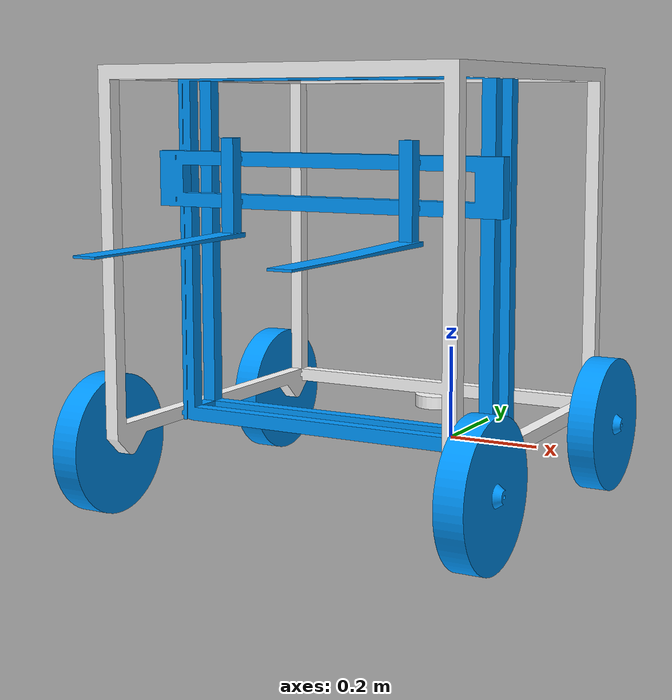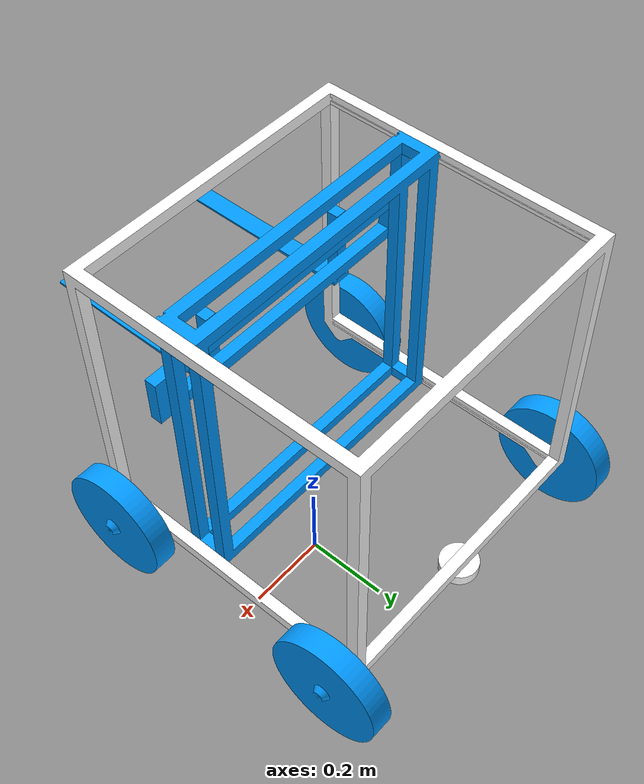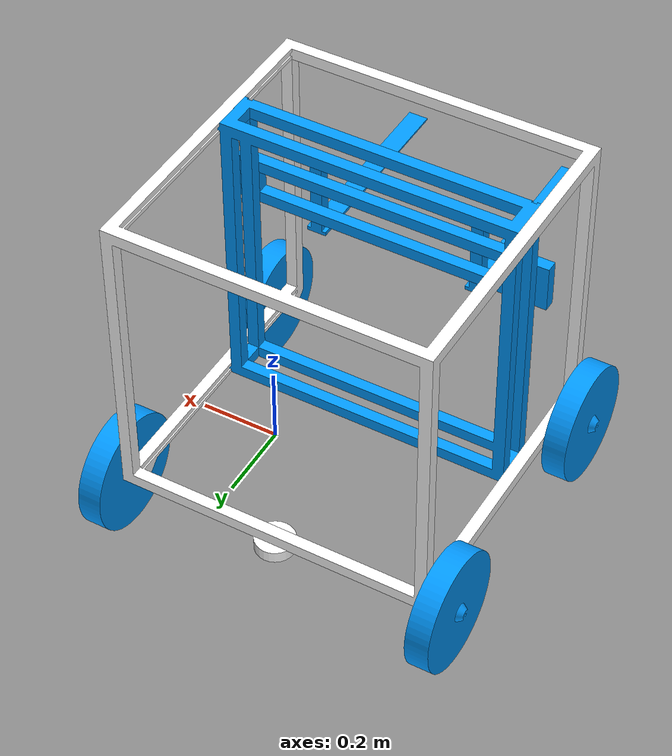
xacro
<?xml version="1.0"?>
<robot xmlns:xacro="http://www.ros.org/wiki/xacro"  name="robot">

    <xacro:include filename="robot_core.xacro" />
    <xacro:include filename="inertial_macros.xacro" />
    <xacro:include filename="gazebo_control.xacro" />
    <xacro:include filename="lidar.xacro" />
    <xacro:include filename="side_slide_transmission.xacro" />
    <xacro:include filename="front_slide_tranmission.xacro" />
    <xacro:include filename="fork_left_tranmission.xacro"/>
    <xacro:include filename="fork_right_tranmission.xacro"/>
    <xacro:include filename="robot_control.urdf.xacro"/>

    <ros2_control name="gripper_robot_gazebo_system" type="system">
        <hardware>
            <plugin>gazebo_ros2_control/GazeboSystem</plugin>
        </hardware>
        <xacro:side_slide_transmission/>
        <xacro:front_slide_transmission/>
        <xacro:fork_left_transmission/>
        <xacro:fork_right_transmission/>
    </ros2_control>
    <xacro:robot_controller/>
</robot>

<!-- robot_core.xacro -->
<robot xmlns:xacro="http://www.ros.org/wiki/xacro" >
<xacro:include filename="inertial_macros.xacro" />

    <material name="white">
        <color rgba="1 1 1 1" />
    </material>

    <material name="orange">
        <color rgba="1 0.5 0 1"/>
    </material>

    <material name="blue">
        <color rgba="0 0.6 1 1"/>
    </material>

    <material name="black">
        <color rgba="0 0 0 1"/>
    </material>

    <material name="red">
        <color rgba="1 0 0 1"/>
    </material>

    <!-- BASE LINK -->

    <link name="base_link">

    </link>
    <link name="chassis">
        <visual>
            <origin xyz="0.324 0.272 -0.016" rpy="0 0 0"/>
            <geometry>
                <mesh filename = "file://$(find articubot_one)/description/Robot_dae/Robot_chassis.dae" scale = "1 1 1"/>
            </geometry>
            <material name="white"/>
        </visual>
        <collision>
            <origin xyz="0.324 0.272 -0.016" rpy="0 0 0"/>
            <geometry>
                <mesh filename = "file://$(find articubot_one)/description/Robot_dae/Robot_chassis.dae" scale = "1 1 1"/>
            </geometry>
        </collision>
        <xacro:inertial_box mass="50" x="0.81" y="0.78" z="0.78">
            <origin xyz="-0.0825 -0.059 0.41" rpy="0 0 0"/>
        </xacro:inertial_box>
    </link>
    <gazebo reference="chassis">
        <material>Gazebo/Orange</material>
    </gazebo>

    <!-- BASE_FOOTPRINT LINK -->

    <joint name="base_footprint_joint" type="fixed">
        <parent link="base_link"/>
        <child link="base_footprint"/>
        <origin xyz="0 0 0" rpy="0 0 0"/>
    </joint>

    <link name="base_footprint">
    </link>

    <joint name="chassis_joint" type="fixed">
        <parent link="base_link"/>
        <child link="chassis"/>
        <origin xyz="-0.1 0 0"/>
    </joint>

    <!-- LEFT BACK WHEEL -->

    <joint name="left_back_wheel_joint" type="continuous">
        <parent link="base_link"/>
        <child link="left_back_wheel"/>
        <origin xyz="0.2695 0.272 0.004" rpy="0 -${pi/2} 0"/>
        <axis xyz="0 0 -1"/>
    </joint>
    <link name="left_back_wheel">
        <visual>
            <geometry>
                <mesh filename = "file://$(find articubot_one)/description/Robot_dae/Robot_wheell.dae" scale = "1 1 1"/>
            </geometry>
            <material name="blue"/>
        </visual>
        <collision>
            <geometry>
                <mesh filename = "file://$(find articubot_one)/description/Robot_dae/Robot_wheell.dae" scale = "1 1 1"/>
            </geometry>
        </collision>
        <xacro:inertial_cylinder mass="5" length="0.075" radius="0.15">
            <origin xyz="0 0 0.004" rpy="0 -${pi/2} 0"/>
        </xacro:inertial_cylinder>
    </link>
    <gazebo reference="left_back_wheel">
        <material>Gazebo/Blue</material>
        <mu1 value="0.8"/>
        <mu2 value="0.8"/>
    </gazebo>

    <!-- LEFT FRONT WHEEL -->

    <joint name="left_front_wheel_joint" type="continuous">
        <parent link="base_link"/>
        <child link="left_front_wheel"/>
        <origin xyz="0.2695 -0.408 0.004" rpy="0 -${pi/2} 0"/>
        <axis xyz="0 0 -1"/>
    </joint>
    <link name="left_front_wheel">
        <visual>
            <geometry>
                <mesh filename = "file://$(find articubot_one)/description/Robot_dae/Robot_wheell.dae" scale = "1 1 1"/>
            </geometry>
            <material name="blue"/>
        </visual>
        <collision>
            <geometry>
                <mesh filename = "file://$(find articubot_one)/description/Robot_dae/Robot_wheell.dae" scale = "1 1 1"/>
            </geometry>
        </collision>
        <xacro:inertial_cylinder mass="5" length="0.075" radius="0.15">
            <origin xyz="0 0 0.004" rpy="0 -${pi/2} 0"/>
        </xacro:inertial_cylinder>
    </link>
    <gazebo reference="left_front_wheel">
        <material>Gazebo/Blue</material>
        <mu1 value="0.8"/>
        <mu2 value="0.8"/>
    </gazebo>

    <!-- RIGHT BACK WHEEL -->

    <joint name="right_back_wheel_joint" type="continuous">
        <parent link="base_link"/>
        <child link="right_back_wheel"/>
        <origin xyz="-0.6315 0.272 0.004" rpy="0 ${pi/2} 0"/>
        <axis xyz="0 0 1"/>
    </joint>
    <link name="right_back_wheel">
        <visual>
            <geometry>
                <mesh filename = "file://$(find articubot_one)/description/Robot_dae/Robot_wheell.dae" scale = "1 1 1"/>
            </geometry>
            <material name="blue"/>
        </visual>
        <collision>
            <geometry>
                <mesh filename = "file://$(find articubot_one)/description/Robot_dae/Robot_wheell.dae" scale = "1 1 1"/>
            </geometry>
        </collision>
        <xacro:inertial_cylinder mass="5" length="0.075" radius="0.15">
            <origin xyz="0 0 0.004" rpy="0 ${pi/2} 0"/>
        </xacro:inertial_cylinder>
    </link>
    <gazebo reference="right_back_wheel">
        <material>Gazebo/Blue</material>
        <mu1 value="0.8"/>
        <mu2 value="0.8"/>
    </gazebo>

    <!-- RIGHT FRONT WHEEL -->

    <joint name="right_front_wheel_joint" type="continuous">
        <parent link="base_link"/>
        <child link="right_front_wheel"/>
        <origin xyz="-0.6315 -0.408 0.004" rpy="0 ${pi/2} 0"/>
        <axis xyz="0 0 1"/>
    </joint>
    <link name="right_front_wheel">
        <visual>
            <geometry>
                <mesh filename = "file://$(find articubot_one)/description/Robot_dae/Robot_wheell.dae" scale = "1 1 1"/>
            </geometry>
            <material name="blue"/>
        </visual>
        <collision>
            <geometry>
                <mesh filename = "file://$(find articubot_one)/description/Robot_dae/Robot_wheell.dae" scale = "1 1 1"/>
            </geometry>
        </collision>
        <xacro:inertial_cylinder mass="5" length="0.075" radius="0.15">
            <origin xyz="0 0 0.004" rpy="0 ${pi/2} 0"/>
        </xacro:inertial_cylinder>
    </link>
    <gazebo reference="right_front_wheel">
        <material>Gazebo/Blue</material>
        <mu1 value="0.8"/>
        <mu2 value="0.8"/>
    </gazebo>

    <!--SIDE SLIDE-->

    <joint name="side_slide_joint" type="prismatic">
        <parent link="base_link"/>
        <child link="side_slide"/>
        <origin xyz="-0.556 -0.1125 0.0239" rpy="0 0 0"/>
        <axis xyz="0 1 0"/>
        <limit lower="0.405" upper="-0.15" velocity="0.1" effort="100" />
        <dynamics damping="1" friction="200"/>
    </joint>
    <link name="side_slide">
        <visual>
            <geometry>
                <mesh filename = "file://$(find articubot_one)/description/Robot_dae/Robot_side_slide.dae" scale = "1 1 1"/>
            </geometry>
            <material name="blue"/>
        </visual>
        <collision>
            <geometry>
                <mesh filename = "file://$(find articubot_one)/description/Robot_dae/Robot_side_slide.dae" scale = "1 1 1"/>
            </geometry>
        </collision>
        <xacro:inertial_box mass="8" x="0.755" y="0.11" z="0.78">
            <origin xyz="0.37 -0.05 0.39" rpy="0 ${pi/2} 0"/>
        </xacro:inertial_box>
    </link>
    <gazebo reference="side_slide">
        <material>Gazebo/Blue</material>
        <mu1 value="0.8"/>
        <mu2 value="0.8"/>
    </gazebo>

    <!--FRONT SLIDE-->

    <joint name="front_slide_joint" type="prismatic">
        <parent link="side_slide"/>
        <child link="front_slide"/>
        <origin xyz="0.78 -0.11 0.6" rpy="0 ${pi} ${pi/2}"/>
        <axis xyz="0 0 1"/>
        <limit lower="0.45" upper="-0.15" velocity="0.1" effort="100" />
        <dynamics damping="10" friction="200"/>
    </joint>
    <link name="front_slide">
        <visual>
            <geometry>
                <mesh filename = "file://$(find articubot_one)/description/Robot_dae/Robot_front_slide.dae" scale = "1 1 1"/>
            </geometry>
            <material name="blue"/>
        </visual>
        <collision>
            <geometry>
                <mesh filename = "file://$(find articubot_one)/description/Robot_dae/Robot_front_slide.dae" scale = "1 1 1"/>
            </geometry>
        </collision>
        <xacro:inertial_box mass="2" x="0.03" y="0.81" z="0.12">
            <origin xyz="0.018 0.405 0.06" rpy="0 ${pi} ${pi/2}"/>
        </xacro:inertial_box>
    </link>
    <gazebo reference="front_slide">
        <material>Gazebo/Blue</material>
        <mu1 value="1"/>
        <mu2 value="1"/>
    </gazebo>

    <!--FORK LEFT-->

    <joint name="fork_left_joint" type="prismatic">
        <parent link="front_slide"/>
        <child link="fork_left"/>
        <origin xyz="0.03 0 -0.03" rpy="0 ${pi} -${pi/2}"/>
        <axis xyz="1 0 0"/>
        <limit lower="0.35" upper="0.07" velocity="0.1" effort="100" />
        <dynamics damping="1" friction="300"/>
    </joint>
    <link name="fork_left">
        <visual>
            <geometry>
                <mesh filename = "file://$(find articubot_one)/description/Robot_dae/Robot_fork.dae" scale = "1 1 1"/>
            </geometry>
            <material name="blue"/>
        </visual>
        <collision>
            <geometry>
                <mesh filename = "file://$(find articubot_one)/description/Robot_dae/Robot_fork.dae" scale = "1 1 1"/>
            </geometry>
        </collision>
        <xacro:inertial_box mass="1" x="0.06" y="0.5" z="0.21">
            <origin xyz="-0.02 0.25 -0.105" rpy="0 ${pi} -${pi/2}"/>
        </xacro:inertial_box>
    </link>
    <gazebo reference="fork_left">
        <material>Gazebo/Blue</material>
        <mu1 value="1"/>
        <mu2 value="1"/>
    </gazebo>

    <!--FORK RIGHT-->

    <joint name="fork_right_joint" type="prismatic">
        <parent link="front_slide"/>
        <child link="fork_right"/>
        <origin xyz="0.03 0 -0.03" rpy="0 ${pi} -${pi/2}"/>
        <axis xyz="1 0 0"/>
        <limit lower="0.49" upper="0.77" velocity="0.1" effort="100" />
        <dynamics damping="1" friction="300"/>
    </joint>
    <link name="fork_right">
        <visual>
            <geometry>
                <mesh filename = "file://$(find articubot_one)/description/Robot_dae/Robot_fork.dae" scale = "1 1 1"/>
            </geometry>
            <material name="blue"/>
        </visual>
        <collision>
            <geometry>
                <mesh filename = "file://$(find articubot_one)/description/Robot_dae/Robot_fork.dae" scale = "1 1 1"/>
            </geometry>
        </collision>
        <xacro:inertial_box mass="1" x="0.06" y="0.5" z="0.21">
            <origin xyz="-0.02 0.25 -0.105" rpy="0 ${pi} -${pi/2}"/>
        </xacro:inertial_box>
    </link>
    <gazebo reference="fork_right">
        <material>Gazebo/Blue</material>
        <mu1 value="1"/>
        <mu2 value="1"/>
    </gazebo>

</robot>

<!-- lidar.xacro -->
<robot xmlns:xacro="http://www.ros.org/wiki/xacro" >

    <joint name="laser_joint" type="fixed">
        <parent link="chassis"/>
        <child link="laser_frame"/>
        <origin xyz="-0.08 0.3 0.01" rpy="0 0 0"/>
    </joint>

    <link name="laser_frame">
        <visual>
            <geometry>
                <cylinder radius="0.05" length="0.03"/>
            </geometry>
            <material name="white"/>
        </visual>
        <collision>
            <geometry>
                <cylinder radius="0.05" length="0.03"/>
            </geometry>
        </collision>
        <xacro:inertial_cylinder mass="0" length="0.03" radius="0.05">
            <origin xyz="0 0 0" rpy="0 0 0"/>
        </xacro:inertial_cylinder>
    </link>

    <gazebo reference="laser_frame">
        <material>Gazebo/White</material>

        <sensor name="laser" type="ray">
            <pose> 0 0 0 0 0 0 </pose>
            <visualize>true</visualize>
            <update_rate>10</update_rate>
            <ray>
                <scan>
                    <horizontal>
                        <samples>360</samples>
                        <min_angle>2.5</min_angle>
                        <max_angle>0.64</max_angle>
                    </horizontal>
                </scan>
                <range>
                    <min>0.3</min>
                    <max>12</max>
                </range>
            </ray>

            <plugin name="laser_controller" filename="libgazebo_ros_ray_sensor.so">
                <ros>
                    <argument>~/out:=scan</argument>
                </ros>
                <output_type>sensor_msgs/LaserScan</output_type>
                <frame_name>laser_frame</frame_name>
            </plugin>
        </sensor>
    </gazebo>

</robot>
